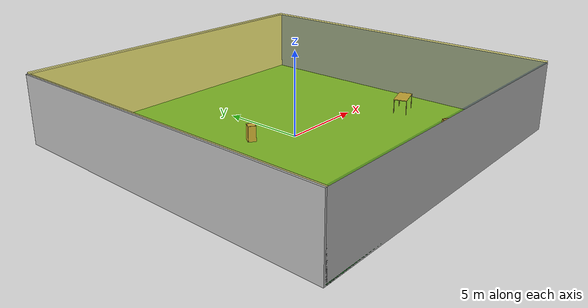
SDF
<sdf version="1.4">
 <world name="default">
  <physics type="ode">
   <max_step_size>0.001</max_step_size>
   <real_time_factor>1</real_time_factor>
   <real_time_update_rate>1000</real_time_update_rate>
   <gravity>0 0 -9.8</gravity>
  </physics>
  <scene><ambient>0.4 0.4 0.4 1</ambient><background>0.7 0.7 0.7 1</background><shadows>1</shadows></scene>
  <model name="Surrounding">
   <static>1</static>
   <link name="Ceiling">
    <collision name="Ceiling_Collision"><geometry><box><size>20 20 0.1</size></box></geometry></collision>
    <visual name="Ceiling_Visual">
     <geometry><box><size>20 20 0.1</size></box></geometry>
     <material>
      <script>
       <uri>file://media/materials/scripts/gazebo.material</uri>
       <name>Gazebo/YellowTransparent</name>
      </script>
     </material>
    </visual>
    <pose>0 0 4.05 0 0 0</pose>
   </link>
   <link name="Wall_South">
    <collision name="Wall_South_Collision">
     <geometry><box><size>20 0 4</size></box></geometry>
     <pose>0 0 2 0 -0 0</pose>
    </collision>
    <visual name="Wall_South_Visual">
     <pose>0 0 2 0 -0 0</pose>
     <geometry><box><size>20 0 4</size></box></geometry>
     <material>
      <script><uri>file://media/materials/scripts/gazebo.material</uri><name>Gazebo/PioneerBody</name></script>
     </material>
    </visual>
    <velocity_decay><linear>0</linear><angular>0</angular></velocity_decay>
    <pose>0 -10 0 0 -0 0</pose>
   </link>
   <link name="Wall_East">
    <collision name="Wall_21_Collision">
     <geometry><box><size>20 0 4</size></box></geometry>
     <pose>0 0 2 0 -0 0</pose>
    </collision>
    <visual name="Wall_21_Visual">
     <pose>0 0 2 0 -0 0</pose>
     <geometry><box><size>20 0 4</size></box></geometry>
     <material>
      <script><uri>file://media/materials/scripts/gazebo.material</uri><name>Gazebo/BlueGlow</name></script>
     </material>
    </visual>
    <velocity_decay><linear>0</linear><angular>0</angular></velocity_decay>
    <pose>10 0 0 0 -0 1.5708</pose>
   </link>
   <link name="Wall_North">
    <collision name="Wall_22_Collision">
     <geometry><box><size>20 0.2 4</size></box></geometry>
     <pose>0 0 2 0 -0 0</pose>
    </collision>
    <visual name="Wall_22_Visual">
     <pose>0 0 2 0 -0 0</pose>
     <geometry><box><size>20 0.2 4</size></box></geometry>
     <material>
      <script><uri>file://media/materials/scripts/gazebo.material</uri><name>Gazebo/WhiteGlow</name></script>
     </material>
    </visual>
    <velocity_decay><linear>0</linear><angular>0</angular></velocity_decay>
    <pose>0 10 0 0 -0 0</pose>
   </link>
   <link name="Wall_West">
    <collision name="Wall_23_Collision">
     <geometry><box><size>20 0.2 4</size></box></geometry>
     <pose>0 0 2 0 -0 0</pose>
    </collision>
    <visual name="Wall_23_Visual">
     <pose>0 0 2 0 -0 0</pose>
     <geometry><box><size>20 0.2 4</size></box></geometry>
     <material>
      <script><uri>file://media/materials/scripts/gazebo.material</uri><name>Gazebo/LightOff</name></script>
     </material>
    </visual>
    <velocity_decay><linear>0</linear><angular>0</angular></velocity_decay>
    <pose>-10 0 0 0 0 -1.5708</pose>
   </link>
   <link name="Ground_link">
    <collision name="collision">
     <pose>0 0 .05 0 -0 0</pose>
     <geometry><box><size>20 20 0.1</size></box></geometry>
    </collision>
    <visual name="visual">
     <pose>0 0 .05 0 -0 0</pose>
     <geometry><box><size>20 20 0.1</size></box></geometry>
     <material>
      <script><uri>file://media/materials/scripts/gazebo.material</uri><name>Gazebo/GreenGlow</name></script>
     </material>
    </visual>
   </link>
   <static>1</static>
  </model>
  <spherical_coordinates>
   <surface_model>EARTH_WGS84</surface_model>
   <latitude_deg>0</latitude_deg>
   <longitude_deg>0</longitude_deg>
   <elevation>0</elevation>
   <heading_deg>0</heading_deg>
  </spherical_coordinates>
  <light name="lightball_0" type="diffuse">
   <diffuse>0.8 0.8 0.8 1</diffuse>
   <specular>0.2 0.2 0.2 1</specular>
   <attenuation>
    <range>100</range>
    <constant>0.7</constant>
    <linear>0.01</linear>
    <quadratic>0.001</quadratic>
   </attenuation>
   <direction>-0.5 0.1 -0.9</direction>
   <pose>-9.27972321586 -3.21320485096 3.2621225877 0 0 0</pose>
  </light>
  <light name="lightball_1" type="diffuse">
   <diffuse>0.8 0.8 0.8 1</diffuse>
   <specular>0.2 0.2 0.2 1</specular>
   <attenuation>
    <range>100</range>
    <constant>0.7</constant>
    <linear>0.01</linear>
    <quadratic>0.001</quadratic>
   </attenuation>
   <direction>-0.5 0.1 -0.9</direction>
   <pose>3.62517901391 0.935686776467 0.879468547716 0 0 0</pose>
  </light>
  <light name="lightball_2" type="diffuse">
   <diffuse>0.8 0.8 0.8 1</diffuse>
   <specular>0.2 0.2 0.2 1</specular>
   <attenuation>
    <range>100</range>
    <constant>0.7</constant>
    <linear>0.01</linear>
    <quadratic>0.001</quadratic>
   </attenuation>
   <direction>-0.5 0.1 -0.9</direction>
   <pose>-7.46692797205 -6.11164950047 1.58922971765 0 0 0</pose>
  </light>
  <light name="lightball_3" type="diffuse">
   <diffuse>0.8 0.8 0.8 1</diffuse>
   <specular>0.2 0.2 0.2 1</specular>
   <attenuation>
    <range>100</range>
    <constant>0.7</constant>
    <linear>0.01</linear>
    <quadratic>0.001</quadratic>
   </attenuation>
   <direction>-0.5 0.1 -0.9</direction>
   <pose>-6.88277550178 -3.11903039538 0.540832399371 0 0 0</pose>
  </light>
  <light name="lightball_4" type="diffuse">
   <diffuse>0.8 0.8 0.8 1</diffuse>
   <specular>0.2 0.2 0.2 1</specular>
   <attenuation>
    <range>100</range>
    <constant>0.7</constant>
    <linear>0.01</linear>
    <quadratic>0.001</quadratic>
   </attenuation>
   <direction>-0.5 0.1 -0.9</direction>
   <pose>4.98154609821 -2.13757467441 0.628355778404 0 0 0</pose>
  </light>
  <light name="lightball_5" type="diffuse">
   <diffuse>0.8 0.8 0.8 1</diffuse>
   <specular>0.2 0.2 0.2 1</specular>
   <attenuation>
    <range>100</range>
    <constant>0.7</constant>
    <linear>0.01</linear>
    <quadratic>0.001</quadratic>
   </attenuation>
   <direction>-0.5 0.1 -0.9</direction>
   <pose>-7.87645313757 8.42673554443 1.29329871496 0 0 0</pose>
  </light>
  <light name="lightball_6" type="diffuse">
   <diffuse>0.8 0.8 0.8 1</diffuse>
   <specular>0.2 0.2 0.2 1</specular>
   <attenuation>
    <range>100</range>
    <constant>0.7</constant>
    <linear>0.01</linear>
    <quadratic>0.001</quadratic>
   </attenuation>
   <direction>-0.5 0.1 -0.9</direction>
   <pose>-7.99830053272 -3.13501712374 0.549428255807 0 0 0</pose>
  </light>
  <light name="lightball_7" type="diffuse">
   <diffuse>0.8 0.8 0.8 1</diffuse>
   <specular>0.2 0.2 0.2 1</specular>
   <attenuation>
    <range>100</range>
    <constant>0.7</constant>
    <linear>0.01</linear>
    <quadratic>0.001</quadratic>
   </attenuation>
   <direction>-0.5 0.1 -0.9</direction>
   <pose>-3.34232107213 3.46332680966 2.84877650711 0 0 0</pose>
  </light>
  <light name="lightball_8" type="diffuse">
   <diffuse>0.8 0.8 0.8 1</diffuse>
   <specular>0.2 0.2 0.2 1</specular>
   <attenuation>
    <range>100</range>
    <constant>0.7</constant>
    <linear>0.01</linear>
    <quadratic>0.001</quadratic>
   </attenuation>
   <direction>-0.5 0.1 -0.9</direction>
   <pose>2.13231253472 -7.93235261506 0.934919501342 0 0 0</pose>
  </light>
  <light name="lightball_9" type="diffuse">
   <diffuse>0.8 0.8 0.8 1</diffuse>
   <specular>0.2 0.2 0.2 1</specular>
   <attenuation>
    <range>100</range>
    <constant>0.7</constant>
    <linear>0.01</linear>
    <quadratic>0.001</quadratic>
   </attenuation>
   <direction>-0.5 0.1 -0.9</direction>
   <pose>-6.97502317758 -2.73777232182 3.72863189714 0 0 0</pose>
  </light>
  <light name="lightball_10" type="diffuse">
   <diffuse>0.8 0.8 0.8 1</diffuse>
   <specular>0.2 0.2 0.2 1</specular>
   <attenuation>
    <range>100</range>
    <constant>0.7</constant>
    <linear>0.01</linear>
    <quadratic>0.001</quadratic>
   </attenuation>
   <direction>-0.5 0.1 -0.9</direction>
   <pose>0.990337416995 -7.82586201362 0.786364870769 0 0 0</pose>
  </light>
  <include>
   <uri>model://construction_cone</uri>
   <pose>-7.94054561786 -4.66305028087 0 0 0 0.392696848983</pose>
  </include>
  <include><uri>model://cabinet</uri><pose>-1.26051576519 -7.95823494597 0 0 0 1.74368796049</pose></include>
  <include><uri>model://cabinet</uri><pose>-2.17318613356 1.29754039924 0 0 0 2.55853312673</pose></include>
  <include>
   <uri>model://construction_cone</uri>
   <pose>1.81271306984 -7.61182914506 0 0 0 1.94122616993</pose>
  </include>
  <include><uri>model://cabinet</uri><pose>5.48929216146 -6.49106215168 0 0 0 0.832302354092</pose></include>
  <include><uri>model://table</uri><pose>7.32234982252 -2.47595549451 0 0 0 0.313967877586</pose></include>
 </world>
</sdf>

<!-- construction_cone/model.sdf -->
<sdf version="1.5">
  <model name="Construction Cone">
    <link name="link">
      <collision name="collision">
        <geometry>
          <mesh>
            <scale>10 10 10</scale>
            <uri>file://isr-testbed/construction_cone/meshes/construction_cone.dae</uri>
          </mesh>
        </geometry>
      </collision>
      <visual name="visual">
        <geometry>
          <mesh>
            <scale>10 10 10</scale>
            <uri>file://isr-testbed/construction_cone/meshes/construction_cone.dae</uri>
          </mesh>
        </geometry>
      </visual>
    </link>
  </model>
</sdf>

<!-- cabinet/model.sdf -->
<sdf version="1.5">
  <model name="cabinet">
    <static>true</static>
    <link name="cabinet_bottom_plate">
      <inertial>
        <pose>0 0 -1 0 0 0</pose>
        <inertia>
          <ixx>2.050000</ixx>
          <ixy>0</ixy>
          <ixz>0</ixz>
          <iyy>2.050000</iyy>
          <iyz>0</iyz>
          <izz>2.050000</izz>
        </inertia>
        <mass>25.000000</mass>
      </inertial>
      <collision name="cabinet_bottom_plate_geom">
        <pose>0 0 0.010000 0 0 0</pose>
        <geometry>
          <box>
            <size>0.450000 0.450000 0.020000</size>
          </box>
        </geometry>
      </collision>
      <visual name="cabinet_bottom_plate_geom_visual">
        <pose>0 0 0.010000 0 0 0</pose>
        <geometry>
          <box>
            <size>0.450000 0.450000 0.020000</size>
          </box>
        </geometry>
        <material>
          <script>
            <uri>model://media/materials/scripts/gazebo.material</uri>
            <name>Gazebo/Wood</name>
          </script>
        </material>
      </visual>
      <collision name="cabinet_bottom_plate_geom_cabinet_back_plate">
        <pose>0.235000 0 0.510000 0 0 0</pose>
        <geometry>
          <box>
            <size>0.020000 0.450000 1.020000</size>
          </box>
        </geometry>
      </collision>
      <visual name="cabinet_bottom_plate_geom_cabinet_back_plate_visual">
        <pose>0.235000 0 0.510000 0 0 0</pose>
        <geometry>
          <box>
            <size>0.020000 0.450000 1.020000</size>
          </box>
        </geometry>
        <material>
          <script>
            <uri>model://media/materials/scripts/gazebo.material</uri>
            <name>Gazebo/Wood</name>
          </script>
        </material>
      </visual>
      <collision name="cabinet_bottom_plate_geom_cabinet_left_plate">
        <pose>0 0.235000 0.510000 0 0 0</pose>
        <geometry>
          <box>
            <size>0.450000 0.020000 1.020000</size>
          </box>
        </geometry>
      </collision>
      <visual name="cabinet_bottom_plate_geom_cabinet_left_plate_visual">
        <pose>0 0.235000 0.510000 0 0 0</pose>
        <geometry>
          <box>
            <size>0.450000 0.020000 1.020000</size>
          </box>
        </geometry>
        <material>
          <script>
            <uri>model://media/materials/scripts/gazebo.material</uri>
            <name>Gazebo/Wood</name>
          </script>
        </material>
      </visual>
      <collision name="cabinet_bottom_plate_geom_cabinet_middle_plate">
        <pose>0 0 0.510000 0 0 0</pose>
        <geometry>
          <box>
            <size>0.450000 0.450000 0.020000</size>
          </box>
        </geometry>
      </collision>
      <visual name="cabinet_bottom_plate_geom_cabinet_middle_plate_visual">
        <pose>0 0 0.510000 0 0 0</pose>
        <geometry>
          <box>
            <size>0.450000 0.450000 0.020000</size>
          </box>
        </geometry>
        <material>
          <script>
            <uri>model://media/materials/scripts/gazebo.material</uri>
            <name>Gazebo/Wood</name>
          </script>
        </material>
      </visual>
      <collision name="cabinet_bottom_plate_geom_cabinet_right_plate">
        <pose>0 -0.235000 0.510000 0 0 0</pose>
        <geometry>
          <box>
            <size>0.450000 0.020000 1.020000</size>
          </box>
        </geometry>
      </collision>
      <visual name="cabinet_bottom_plate_geom_cabinet_right_plate_visual">
        <pose>0 -0.235000 0.510000 0 0 0</pose>
        <geometry>
          <box>
            <size>0.450000 0.020000 1.020000</size>
          </box>
        </geometry>
        <material>
          <script>
            <uri>model://media/materials/scripts/gazebo.material</uri>
            <name>Gazebo/Wood</name>
          </script>
        </material>
      </visual>
      <collision name="cabinet_bottom_plate_geom_cabinet_top_plate">
        <pose>0 0 1.010000 0 0 0</pose>
        <geometry>
          <box>
            <size>0.450000 0.450000 0.020000</size>
          </box>
        </geometry>
      </collision>
      <visual name="cabinet_bottom_plate_geom_cabinet_top_plate_visual">
        <pose>0 0 1.010000 0 0 0</pose>
        <geometry>
          <box>
            <size>0.450000 0.450000 0.020000</size>
          </box>
        </geometry>
        <material>
          <script>
            <uri>model://media/materials/scripts/gazebo.material</uri>
            <name>Gazebo/Wood</name>
          </script>
        </material>
      </visual>
    </link>
  </model>
</sdf>

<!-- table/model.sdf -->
<sdf version="1.5">
  <model name="table">
    <static>true</static>
    <link name="link">
      <collision name="surface">
        <pose>0 0 1.0 0 0 0</pose>
        <geometry>
          <box>
            <size>1.5 0.8 0.03</size>
          </box>
        </geometry>
        <surface>
          <friction>
            <ode>
              <mu>0.6</mu>
              <mu2>0.6</mu2>
            </ode>
          </friction>
        </surface>
      </collision>
      <visual name="visual1">
        <pose>0 0 1.0 0 0 0</pose>
        <geometry>
          <box>
            <size>1.5 0.8 0.03</size>
          </box>
        </geometry>
        <material>
          <script>
            <uri>model://media/materials/scripts/gazebo.material</uri>
            <name>Gazebo/Wood</name>
          </script>
        </material>
      </visual>
      <collision name="front_left_leg">
        <pose>0.68 0.38 0.5 0 0 0</pose>
        <geometry>
          <cylinder>
            <radius>0.02</radius>
            <length>1.0</length>
          </cylinder>
        </geometry>
      </collision>
      <visual name="front_left_leg">
        <pose>0.68 0.38 0.5 0 0 0</pose>
        <geometry>
          <cylinder>
            <radius>0.02</radius>
            <length>1.0</length>
          </cylinder>
        </geometry>
        <material>
          <script>
            <uri>model://media/materials/scripts/gazebo.material</uri>
            <name>Gazebo/Grey</name>
          </script>
        </material>
      </visual>
      <collision name="front_right_leg">
        <pose>0.68 -0.38 0.5 0 0 0</pose>
        <geometry>
          <cylinder>
            <radius>0.02</radius>
            <length>1.0</length>
          </cylinder>
        </geometry>
      </collision>
      <visual name="front_right_leg">
        <pose>0.68 -0.38 0.5 0 0 0</pose>
        <geometry>
          <cylinder>
            <radius>0.02</radius>
            <length>1.0</length>
          </cylinder>
        </geometry>
        <material>
          <script>
            <uri>model://media/materials/scripts/gazebo.material</uri>
            <name>Gazebo/Grey</name>
          </script>
        </material>
      </visual>
      <collision name="back_right_leg">
        <pose>-0.68 -0.38 0.5 0 0 0</pose>
        <geometry>
          <cylinder>
            <radius>0.02</radius>
            <length>1.0</length>
          </cylinder>
        </geometry>
      </collision>
      <visual name="back_right_leg">
        <pose>-0.68 -0.38 0.5 0 0 0</pose>
        <geometry>
          <cylinder>
            <radius>0.02</radius>
            <length>1.0</length>
          </cylinder>
        </geometry>
        <material>
          <script>
            <uri>model://media/materials/scripts/gazebo.material</uri>
            <name>Gazebo/Grey</name>
          </script>
        </material>
      </visual>
      <collision name="back_left_leg">
        <pose>-0.68 0.38 0.5 0 0 0</pose>
        <geometry>
          <cylinder>
            <radius>0.02</radius>
            <length>1.0</length>
          </cylinder>
        </geometry>
      </collision>
      <visual name="back_left_leg">
        <pose>-0.68 0.38 0.5 0 0 0</pose>
        <geometry>
          <cylinder>
            <radius>0.02</radius>
            <length>1.0</length>
          </cylinder>
        </geometry>
        <material>
          <script>
            <uri>model://media/materials/scripts/gazebo.material</uri>
            <name>Gazebo/Grey</name>
          </script>
        </material>
      </visual>
    </link>
  </model>
</sdf>
